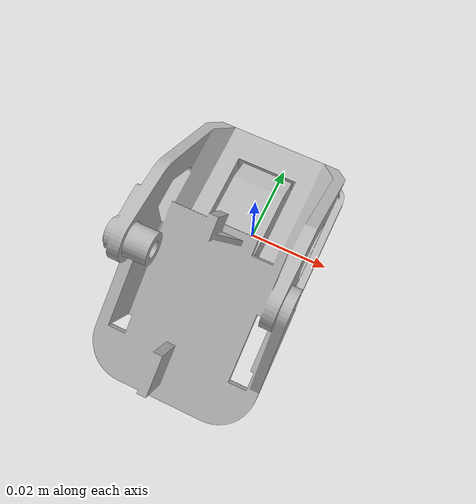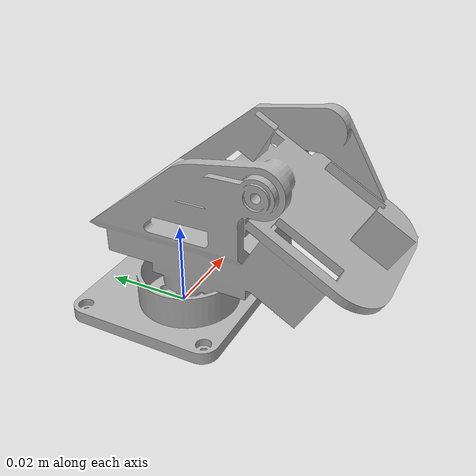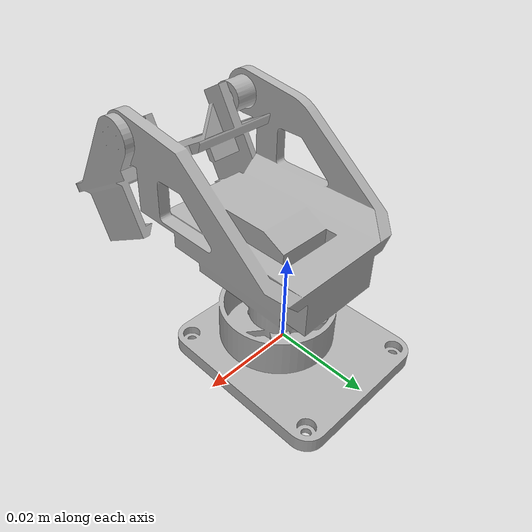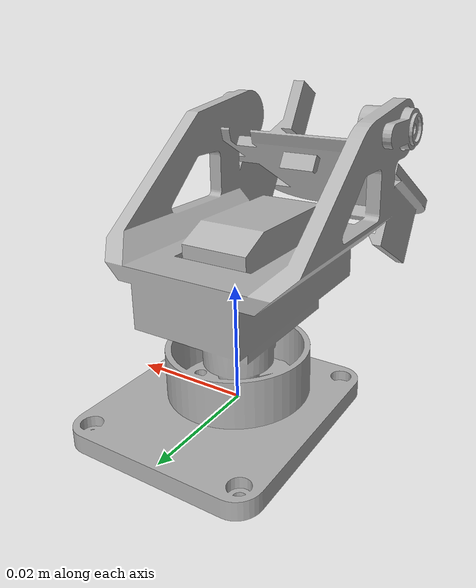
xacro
<?xml version="1.0" ?>
<robot name="pantilt" xmlns:xacro="http://www.ros.org/wiki/xacro">

<xacro:include filename="$(find pantilt_description)/urdf/materials.xacro" />
<xacro:include filename="$(find pantilt_description)/urdf/pantilt.trans" />
<xacro:include filename="$(find pantilt_description)/urdf/pantilt.gazebo" />
<link name="base_link">
  <inertial>
    <origin xyz="0.0005375835080120159 -0.010108698160494176 0.020419259083784055" rpy="0 0 0"/>
    <mass value="0.15393113426455543"/>
    <inertia ixx="5.7e-05" iyy="3.6e-05" izz="4.7e-05" ixy="1e-06" iyz="1.4e-05" ixz="0.0"/>
  </inertial>
  <visual>
    <origin xyz="0 0 0" rpy="0 0 0"/>
    <geometry>
      <mesh filename="package://pantilt_description/meshes/base_link.stl" scale="0.001 0.001 0.001"/>
    </geometry>
    <material name="silver"/>
  </visual>
  <collision>
    <origin xyz="0 0 0" rpy="0 0 0"/>
    <geometry>
      <mesh filename="package://pantilt_description/meshes/base_link.stl" scale="0.001 0.001 0.001"/>
    </geometry>
  </collision>
</link>

</robot>

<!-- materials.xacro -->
<robot name="pantilt" xmlns:xacro="http://www.ros.org/wiki/xacro" >

<material name="silver">
  <color rgba="0.700 0.700 0.700 1.000"/>
</material>

</robot>

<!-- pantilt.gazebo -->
<robot name="pantilt" xmlns:xacro="http://www.ros.org/wiki/xacro" >

<xacro:property name="body_color" value="Gazebo/Silver" />

<gazebo>
  <plugin name="control" filename="libgazebo_ros_control.so"/>
</gazebo>
<gazebo reference="base_link">
  <material>${body_color}</material>
  <mu1>0.2</mu1>
  <mu2>0.2</mu2>
  <selfCollide>true</selfCollide>
  <gravity>true</gravity>
</gazebo>

</robot>
